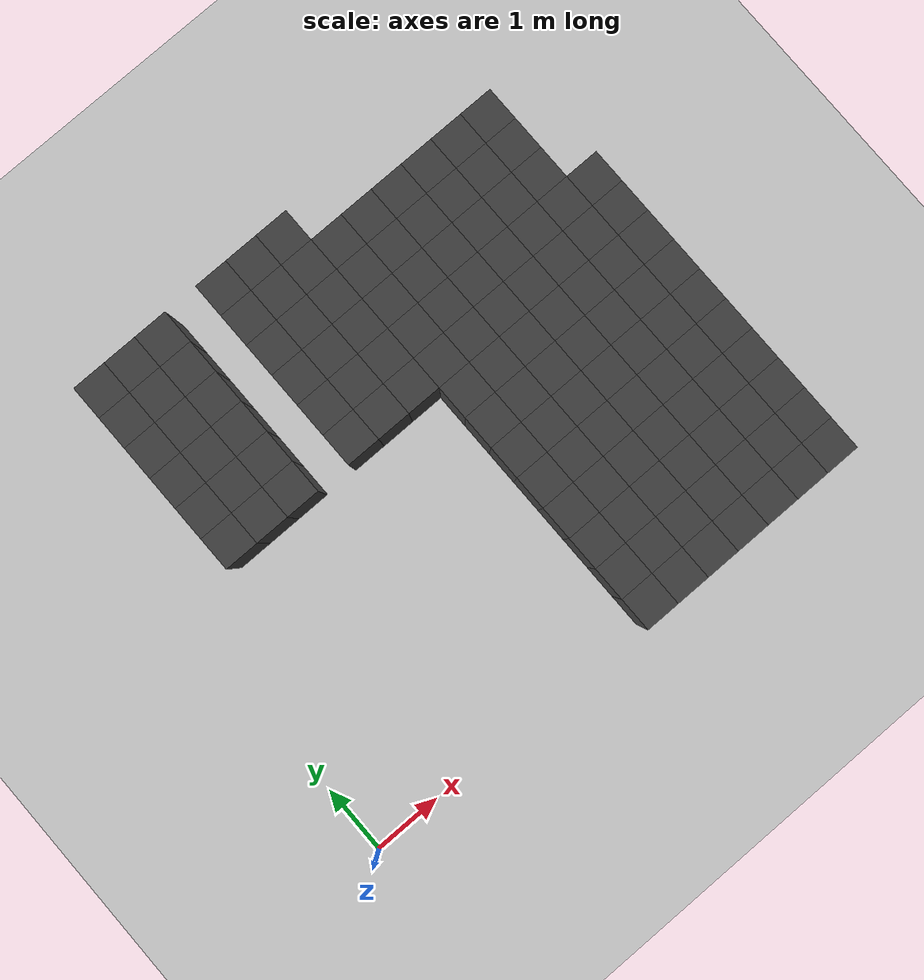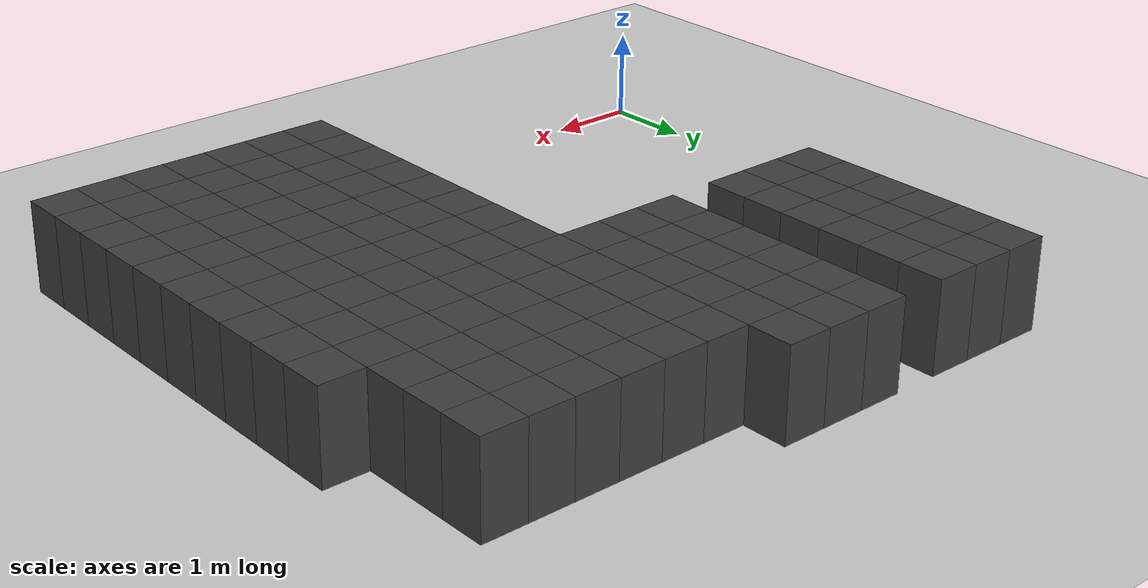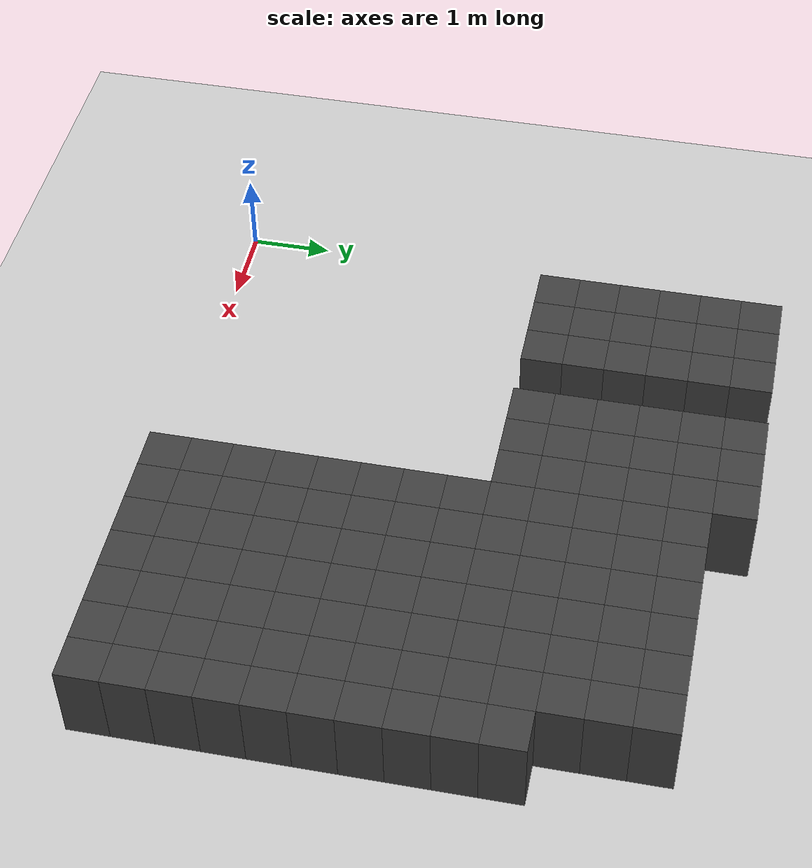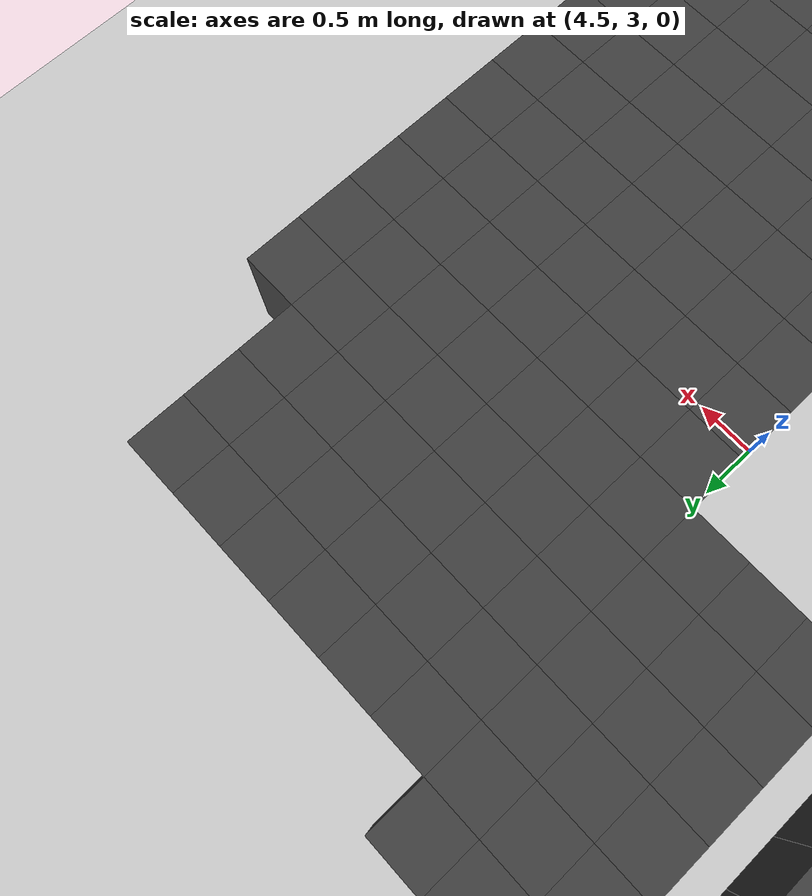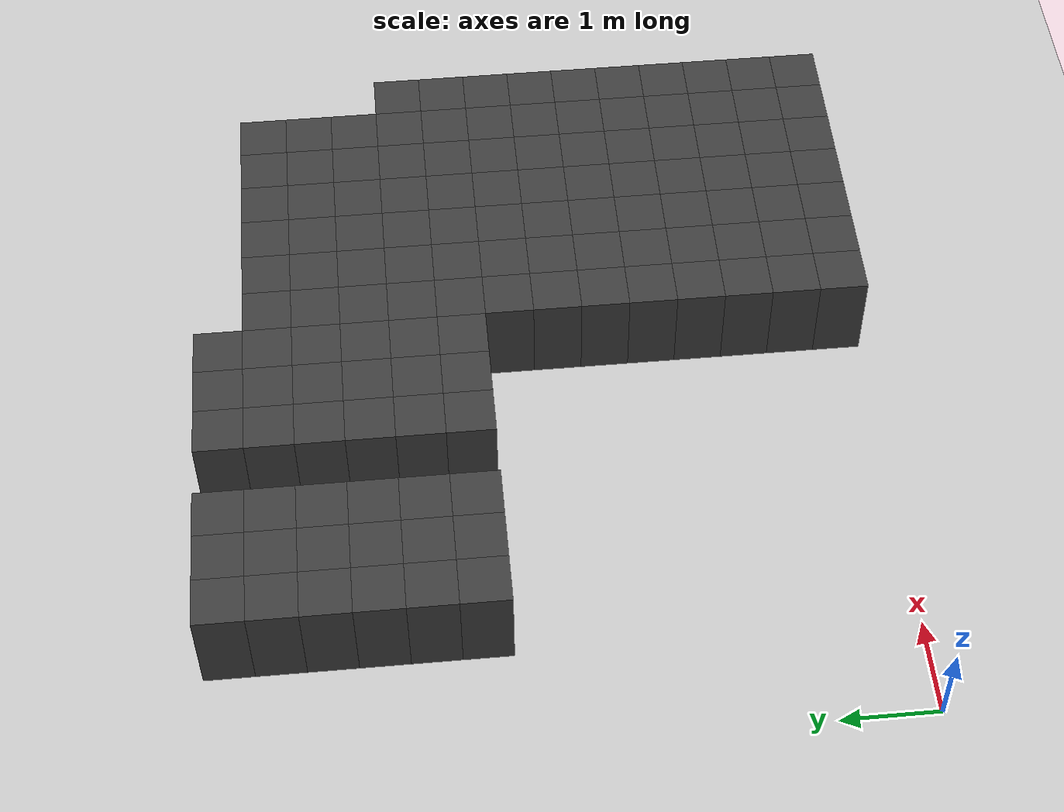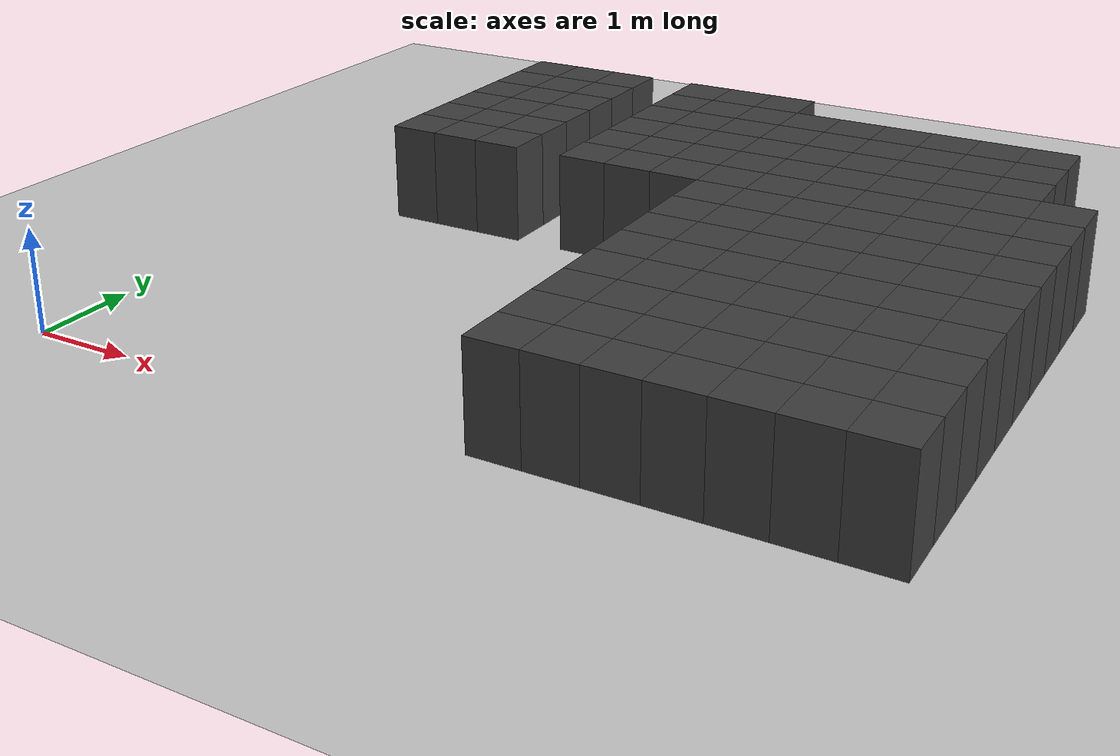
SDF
<sdf version="1.7">
 <world name="map_12818">
  <model name="ground_plane">
   <static>true</static>
   <link name="link">
    <collision name="collision">
     <geometry><plane><normal>0 0 1</normal><size>200 200</size></plane></geometry>
    </collision>
    <visual name="visual">
     <geometry><plane><normal>0 0 1</normal><size>200 200</size></plane></geometry>
     <material><ambient>0.8 0.8 0.8 1</ambient><diffuse>0.8 0.8 0.8 1</diffuse></material>
    </visual>
   </link>
  </model>
  <model name="maze_environment">
   <static>true</static>
   <link name="wall_539">
    <pose>1.250 6.750 0.500 0 0 0</pose>
    <collision name="col"><geometry><box><size>0.5 0.5 1.0</size></box></geometry></collision>
    <visual name="vis">
     <geometry><box><size>0.5 0.5 1.0</size></box></geometry>
     <material><ambient>0.15 0.15 0.15 1</ambient><diffuse>0.25 0.25 0.25 1</diffuse></material>
    </visual>
   </link>
   <link name="wall_540">
    <pose>1.750 6.750 0.500 0 0 0</pose>
    <collision name="col"><geometry><box><size>0.5 0.5 1.0</size></box></geometry></collision>
    <visual name="vis">
     <geometry><box><size>0.5 0.5 1.0</size></box></geometry>
     <material><ambient>0.15 0.15 0.15 1</ambient><diffuse>0.25 0.25 0.25 1</diffuse></material>
    </visual>
   </link>
   <link name="wall_541">
    <pose>2.250 6.750 0.500 0 0 0</pose>
    <collision name="col"><geometry><box><size>0.5 0.5 1.0</size></box></geometry></collision>
    <visual name="vis">
     <geometry><box><size>0.5 0.5 1.0</size></box></geometry>
     <material><ambient>0.15 0.15 0.15 1</ambient><diffuse>0.25 0.25 0.25 1</diffuse></material>
    </visual>
   </link>
   <link name="wall_542">
    <pose>3.250 6.750 0.500 0 0 0</pose>
    <collision name="col"><geometry><box><size>0.5 0.5 1.0</size></box></geometry></collision>
    <visual name="vis">
     <geometry><box><size>0.5 0.5 1.0</size></box></geometry>
     <material><ambient>0.15 0.15 0.15 1</ambient><diffuse>0.25 0.25 0.25 1</diffuse></material>
    </visual>
   </link>
   <link name="wall_543">
    <pose>3.750 6.750 0.500 0 0 0</pose>
    <collision name="col"><geometry><box><size>0.5 0.5 1.0</size></box></geometry></collision>
    <visual name="vis">
     <geometry><box><size>0.5 0.5 1.0</size></box></geometry>
     <material><ambient>0.15 0.15 0.15 1</ambient><diffuse>0.25 0.25 0.25 1</diffuse></material>
    </visual>
   </link>
   <link name="wall_544">
    <pose>4.250 6.750 0.500 0 0 0</pose>
    <collision name="col"><geometry><box><size>0.5 0.5 1.0</size></box></geometry></collision>
    <visual name="vis">
     <geometry><box><size>0.5 0.5 1.0</size></box></geometry>
     <material><ambient>0.15 0.15 0.15 1</ambient><diffuse>0.25 0.25 0.25 1</diffuse></material>
    </visual>
   </link>
   <link name="wall_587">
    <pose>1.250 6.250 0.500 0 0 0</pose>
    <collision name="col"><geometry><box><size>0.5 0.5 1.0</size></box></geometry></collision>
    <visual name="vis">
     <geometry><box><size>0.5 0.5 1.0</size></box></geometry>
     <material><ambient>0.15 0.15 0.15 1</ambient><diffuse>0.25 0.25 0.25 1</diffuse></material>
    </visual>
   </link>
   <link name="wall_588">
    <pose>1.750 6.250 0.500 0 0 0</pose>
    <collision name="col"><geometry><box><size>0.5 0.5 1.0</size></box></geometry></collision>
    <visual name="vis">
     <geometry><box><size>0.5 0.5 1.0</size></box></geometry>
     <material><ambient>0.15 0.15 0.15 1</ambient><diffuse>0.25 0.25 0.25 1</diffuse></material>
    </visual>
   </link>
   <link name="wall_589">
    <pose>2.250 6.250 0.500 0 0 0</pose>
    <collision name="col"><geometry><box><size>0.5 0.5 1.0</size></box></geometry></collision>
    <visual name="vis">
     <geometry><box><size>0.5 0.5 1.0</size></box></geometry>
     <material><ambient>0.15 0.15 0.15 1</ambient><diffuse>0.25 0.25 0.25 1</diffuse></material>
    </visual>
   </link>
   <link name="wall_590">
    <pose>3.250 6.250 0.500 0 0 0</pose>
    <collision name="col"><geometry><box><size>0.5 0.5 1.0</size></box></geometry></collision>
    <visual name="vis">
     <geometry><box><size>0.5 0.5 1.0</size></box></geometry>
     <material><ambient>0.15 0.15 0.15 1</ambient><diffuse>0.25 0.25 0.25 1</diffuse></material>
    </visual>
   </link>
   <link name="wall_591">
    <pose>3.750 6.250 0.500 0 0 0</pose>
    <collision name="col"><geometry><box><size>0.5 0.5 1.0</size></box></geometry></collision>
    <visual name="vis">
     <geometry><box><size>0.5 0.5 1.0</size></box></geometry>
     <material><ambient>0.15 0.15 0.15 1</ambient><diffuse>0.25 0.25 0.25 1</diffuse></material>
    </visual>
   </link>
   <link name="wall_592">
    <pose>4.250 6.250 0.500 0 0 0</pose>
    <collision name="col"><geometry><box><size>0.5 0.5 1.0</size></box></geometry></collision>
    <visual name="vis">
     <geometry><box><size>0.5 0.5 1.0</size></box></geometry>
     <material><ambient>0.15 0.15 0.15 1</ambient><diffuse>0.25 0.25 0.25 1</diffuse></material>
    </visual>
   </link>
   <link name="wall_593">
    <pose>4.750 6.250 0.500 0 0 0</pose>
    <collision name="col"><geometry><box><size>0.5 0.5 1.0</size></box></geometry></collision>
    <visual name="vis">
     <geometry><box><size>0.5 0.5 1.0</size></box></geometry>
     <material><ambient>0.15 0.15 0.15 1</ambient><diffuse>0.25 0.25 0.25 1</diffuse></material>
    </visual>
   </link>
   <link name="wall_594">
    <pose>5.250 6.250 0.500 0 0 0</pose>
    <collision name="col"><geometry><box><size>0.5 0.5 1.0</size></box></geometry></collision>
    <visual name="vis">
     <geometry><box><size>0.5 0.5 1.0</size></box></geometry>
     <material><ambient>0.15 0.15 0.15 1</ambient><diffuse>0.25 0.25 0.25 1</diffuse></material>
    </visual>
   </link>
   <link name="wall_595">
    <pose>5.750 6.250 0.500 0 0 0</pose>
    <collision name="col"><geometry><box><size>0.5 0.5 1.0</size></box></geometry></collision>
    <visual name="vis">
     <geometry><box><size>0.5 0.5 1.0</size></box></geometry>
     <material><ambient>0.15 0.15 0.15 1</ambient><diffuse>0.25 0.25 0.25 1</diffuse></material>
    </visual>
   </link>
   <link name="wall_596">
    <pose>6.250 6.250 0.500 0 0 0</pose>
    <collision name="col"><geometry><box><size>0.5 0.5 1.0</size></box></geometry></collision>
    <visual name="vis">
     <geometry><box><size>0.5 0.5 1.0</size></box></geometry>
     <material><ambient>0.15 0.15 0.15 1</ambient><diffuse>0.25 0.25 0.25 1</diffuse></material>
    </visual>
   </link>
   <link name="wall_597">
    <pose>6.750 6.250 0.500 0 0 0</pose>
    <collision name="col"><geometry><box><size>0.5 0.5 1.0</size></box></geometry></collision>
    <visual name="vis">
     <geometry><box><size>0.5 0.5 1.0</size></box></geometry>
     <material><ambient>0.15 0.15 0.15 1</ambient><diffuse>0.25 0.25 0.25 1</diffuse></material>
    </visual>
   </link>
   <link name="wall_598">
    <pose>7.250 6.250 0.500 0 0 0</pose>
    <collision name="col"><geometry><box><size>0.5 0.5 1.0</size></box></geometry></collision>
    <visual name="vis">
     <geometry><box><size>0.5 0.5 1.0</size></box></geometry>
     <material><ambient>0.15 0.15 0.15 1</ambient><diffuse>0.25 0.25 0.25 1</diffuse></material>
    </visual>
   </link>
   <link name="wall_635">
    <pose>1.250 5.750 0.500 0 0 0</pose>
    <collision name="col"><geometry><box><size>0.5 0.5 1.0</size></box></geometry></collision>
    <visual name="vis">
     <geometry><box><size>0.5 0.5 1.0</size></box></geometry>
     <material><ambient>0.15 0.15 0.15 1</ambient><diffuse>0.25 0.25 0.25 1</diffuse></material>
    </visual>
   </link>
   <link name="wall_636">
    <pose>1.750 5.750 0.500 0 0 0</pose>
    <collision name="col"><geometry><box><size>0.5 0.5 1.0</size></box></geometry></collision>
    <visual name="vis">
     <geometry><box><size>0.5 0.5 1.0</size></box></geometry>
     <material><ambient>0.15 0.15 0.15 1</ambient><diffuse>0.25 0.25 0.25 1</diffuse></material>
    </visual>
   </link>
   <link name="wall_637">
    <pose>2.250 5.750 0.500 0 0 0</pose>
    <collision name="col"><geometry><box><size>0.5 0.5 1.0</size></box></geometry></collision>
    <visual name="vis">
     <geometry><box><size>0.5 0.5 1.0</size></box></geometry>
     <material><ambient>0.15 0.15 0.15 1</ambient><diffuse>0.25 0.25 0.25 1</diffuse></material>
    </visual>
   </link>
   <link name="wall_638">
    <pose>3.250 5.750 0.500 0 0 0</pose>
    <collision name="col"><geometry><box><size>0.5 0.5 1.0</size></box></geometry></collision>
    <visual name="vis">
     <geometry><box><size>0.5 0.5 1.0</size></box></geometry>
     <material><ambient>0.15 0.15 0.15 1</ambient><diffuse>0.25 0.25 0.25 1</diffuse></material>
    </visual>
   </link>
   <link name="wall_639">
    <pose>3.750 5.750 0.500 0 0 0</pose>
    <collision name="col"><geometry><box><size>0.5 0.5 1.0</size></box></geometry></collision>
    <visual name="vis">
     <geometry><box><size>0.5 0.5 1.0</size></box></geometry>
     <material><ambient>0.15 0.15 0.15 1</ambient><diffuse>0.25 0.25 0.25 1</diffuse></material>
    </visual>
   </link>
   <link name="wall_640">
    <pose>4.250 5.750 0.500 0 0 0</pose>
    <collision name="col"><geometry><box><size>0.5 0.5 1.0</size></box></geometry></collision>
    <visual name="vis">
     <geometry><box><size>0.5 0.5 1.0</size></box></geometry>
     <material><ambient>0.15 0.15 0.15 1</ambient><diffuse>0.25 0.25 0.25 1</diffuse></material>
    </visual>
   </link>
   <link name="wall_641">
    <pose>4.750 5.750 0.500 0 0 0</pose>
    <collision name="col"><geometry><box><size>0.5 0.5 1.0</size></box></geometry></collision>
    <visual name="vis">
     <geometry><box><size>0.5 0.5 1.0</size></box></geometry>
     <material><ambient>0.15 0.15 0.15 1</ambient><diffuse>0.25 0.25 0.25 1</diffuse></material>
    </visual>
   </link>
   <link name="wall_642">
    <pose>5.250 5.750 0.500 0 0 0</pose>
    <collision name="col"><geometry><box><size>0.5 0.5 1.0</size></box></geometry></collision>
    <visual name="vis">
     <geometry><box><size>0.5 0.5 1.0</size></box></geometry>
     <material><ambient>0.15 0.15 0.15 1</ambient><diffuse>0.25 0.25 0.25 1</diffuse></material>
    </visual>
   </link>
   <link name="wall_643">
    <pose>5.750 5.750 0.500 0 0 0</pose>
    <collision name="col"><geometry><box><size>0.5 0.5 1.0</size></box></geometry></collision>
    <visual name="vis">
     <geometry><box><size>0.5 0.5 1.0</size></box></geometry>
     <material><ambient>0.15 0.15 0.15 1</ambient><diffuse>0.25 0.25 0.25 1</diffuse></material>
    </visual>
   </link>
   <link name="wall_644">
    <pose>6.250 5.750 0.500 0 0 0</pose>
    <collision name="col"><geometry><box><size>0.5 0.5 1.0</size></box></geometry></collision>
    <visual name="vis">
     <geometry><box><size>0.5 0.5 1.0</size></box></geometry>
     <material><ambient>0.15 0.15 0.15 1</ambient><diffuse>0.25 0.25 0.25 1</diffuse></material>
    </visual>
   </link>
   <link name="wall_645">
    <pose>6.750 5.750 0.500 0 0 0</pose>
    <collision name="col"><geometry><box><size>0.5 0.5 1.0</size></box></geometry></collision>
    <visual name="vis">
     <geometry><box><size>0.5 0.5 1.0</size></box></geometry>
     <material><ambient>0.15 0.15 0.15 1</ambient><diffuse>0.25 0.25 0.25 1</diffuse></material>
    </visual>
   </link>
   <link name="wall_646">
    <pose>7.250 5.750 0.500 0 0 0</pose>
    <collision name="col"><geometry><box><size>0.5 0.5 1.0</size></box></geometry></collision>
    <visual name="vis">
     <geometry><box><size>0.5 0.5 1.0</size></box></geometry>
     <material><ambient>0.15 0.15 0.15 1</ambient><diffuse>0.25 0.25 0.25 1</diffuse></material>
    </visual>
   </link>
   <link name="wall_683">
    <pose>1.250 5.250 0.500 0 0 0</pose>
    <collision name="col"><geometry><box><size>0.5 0.5 1.0</size></box></geometry></collision>
    <visual name="vis">
     <geometry><box><size>0.5 0.5 1.0</size></box></geometry>
     <material><ambient>0.15 0.15 0.15 1</ambient><diffuse>0.25 0.25 0.25 1</diffuse></material>
    </visual>
   </link>
   <link name="wall_684">
    <pose>1.750 5.250 0.500 0 0 0</pose>
    <collision name="col"><geometry><box><size>0.5 0.5 1.0</size></box></geometry></collision>
    <visual name="vis">
     <geometry><box><size>0.5 0.5 1.0</size></box></geometry>
     <material><ambient>0.15 0.15 0.15 1</ambient><diffuse>0.25 0.25 0.25 1</diffuse></material>
    </visual>
   </link>
   <link name="wall_685">
    <pose>2.250 5.250 0.500 0 0 0</pose>
    <collision name="col"><geometry><box><size>0.5 0.5 1.0</size></box></geometry></collision>
    <visual name="vis">
     <geometry><box><size>0.5 0.5 1.0</size></box></geometry>
     <material><ambient>0.15 0.15 0.15 1</ambient><diffuse>0.25 0.25 0.25 1</diffuse></material>
    </visual>
   </link>
   <link name="wall_686">
    <pose>3.250 5.250 0.500 0 0 0</pose>
    <collision name="col"><geometry><box><size>0.5 0.5 1.0</size></box></geometry></collision>
    <visual name="vis">
     <geometry><box><size>0.5 0.5 1.0</size></box></geometry>
     <material><ambient>0.15 0.15 0.15 1</ambient><diffuse>0.25 0.25 0.25 1</diffuse></material>
    </visual>
   </link>
   <link name="wall_687">
    <pose>3.750 5.250 0.500 0 0 0</pose>
    <collision name="col"><geometry><box><size>0.5 0.5 1.0</size></box></geometry></collision>
    <visual name="vis">
     <geometry><box><size>0.5 0.5 1.0</size></box></geometry>
     <material><ambient>0.15 0.15 0.15 1</ambient><diffuse>0.25 0.25 0.25 1</diffuse></material>
    </visual>
   </link>
   <link name="wall_688">
    <pose>4.250 5.250 0.500 0 0 0</pose>
    <collision name="col"><geometry><box><size>0.5 0.5 1.0</size></box></geometry></collision>
    <visual name="vis">
     <geometry><box><size>0.5 0.5 1.0</size></box></geometry>
     <material><ambient>0.15 0.15 0.15 1</ambient><diffuse>0.25 0.25 0.25 1</diffuse></material>
    </visual>
   </link>
   <link name="wall_689">
    <pose>4.750 5.250 0.500 0 0 0</pose>
    <collision name="col"><geometry><box><size>0.5 0.5 1.0</size></box></geometry></collision>
    <visual name="vis">
     <geometry><box><size>0.5 0.5 1.0</size></box></geometry>
     <material><ambient>0.15 0.15 0.15 1</ambient><diffuse>0.25 0.25 0.25 1</diffuse></material>
    </visual>
   </link>
   <link name="wall_690">
    <pose>5.250 5.250 0.500 0 0 0</pose>
    <collision name="col"><geometry><box><size>0.5 0.5 1.0</size></box></geometry></collision>
    <visual name="vis">
     <geometry><box><size>0.5 0.5 1.0</size></box></geometry>
     <material><ambient>0.15 0.15 0.15 1</ambient><diffuse>0.25 0.25 0.25 1</diffuse></material>
    </visual>
   </link>
   <link name="wall_691">
    <pose>5.750 5.250 0.500 0 0 0</pose>
    <collision name="col"><geometry><box><size>0.5 0.5 1.0</size></box></geometry></collision>
    <visual name="vis">
     <geometry><box><size>0.5 0.5 1.0</size></box></geometry>
     <material><ambient>0.15 0.15 0.15 1</ambient><diffuse>0.25 0.25 0.25 1</diffuse></material>
    </visual>
   </link>
   <link name="wall_692">
    <pose>6.250 5.250 0.500 0 0 0</pose>
    <collision name="col"><geometry><box><size>0.5 0.5 1.0</size></box></geometry></collision>
    <visual name="vis">
     <geometry><box><size>0.5 0.5 1.0</size></box></geometry>
     <material><ambient>0.15 0.15 0.15 1</ambient><diffuse>0.25 0.25 0.25 1</diffuse></material>
    </visual>
   </link>
   <link name="wall_693">
    <pose>6.750 5.250 0.500 0 0 0</pose>
    <collision name="col"><geometry><box><size>0.5 0.5 1.0</size></box></geometry></collision>
    <visual name="vis">
     <geometry><box><size>0.5 0.5 1.0</size></box></geometry>
     <material><ambient>0.15 0.15 0.15 1</ambient><diffuse>0.25 0.25 0.25 1</diffuse></material>
    </visual>
   </link>
   <link name="wall_694">
    <pose>7.250 5.250 0.500 0 0 0</pose>
    <collision name="col"><geometry><box><size>0.5 0.5 1.0</size></box></geometry></collision>
    <visual name="vis">
     <geometry><box><size>0.5 0.5 1.0</size></box></geometry>
     <material><ambient>0.15 0.15 0.15 1</ambient><diffuse>0.25 0.25 0.25 1</diffuse></material>
    </visual>
   </link>
   <link name="wall_731">
    <pose>1.250 4.750 0.500 0 0 0</pose>
    <collision name="col"><geometry><box><size>0.5 0.5 1.0</size></box></geometry></collision>
    <visual name="vis">
     <geometry><box><size>0.5 0.5 1.0</size></box></geometry>
     <material><ambient>0.15 0.15 0.15 1</ambient><diffuse>0.25 0.25 0.25 1</diffuse></material>
    </visual>
   </link>
   <link name="wall_732">
    <pose>1.750 4.750 0.500 0 0 0</pose>
    <collision name="col"><geometry><box><size>0.5 0.5 1.0</size></box></geometry></collision>
    <visual name="vis">
     <geometry><box><size>0.5 0.5 1.0</size></box></geometry>
     <material><ambient>0.15 0.15 0.15 1</ambient><diffuse>0.25 0.25 0.25 1</diffuse></material>
    </visual>
   </link>
   <link name="wall_733">
    <pose>2.250 4.750 0.500 0 0 0</pose>
    <collision name="col"><geometry><box><size>0.5 0.5 1.0</size></box></geometry></collision>
    <visual name="vis">
     <geometry><box><size>0.5 0.5 1.0</size></box></geometry>
     <material><ambient>0.15 0.15 0.15 1</ambient><diffuse>0.25 0.25 0.25 1</diffuse></material>
    </visual>
   </link>
   <link name="wall_734">
    <pose>3.250 4.750 0.500 0 0 0</pose>
    <collision name="col"><geometry><box><size>0.5 0.5 1.0</size></box></geometry></collision>
    <visual name="vis">
     <geometry><box><size>0.5 0.5 1.0</size></box></geometry>
     <material><ambient>0.15 0.15 0.15 1</ambient><diffuse>0.25 0.25 0.25 1</diffuse></material>
    </visual>
   </link>
   <link name="wall_735">
    <pose>3.750 4.750 0.500 0 0 0</pose>
    <collision name="col"><geometry><box><size>0.5 0.5 1.0</size></box></geometry></collision>
    <visual name="vis">
     <geometry><box><size>0.5 0.5 1.0</size></box></geometry>
     <material><ambient>0.15 0.15 0.15 1</ambient><diffuse>0.25 0.25 0.25 1</diffuse></material>
    </visual>
   </link>
   <link name="wall_736">
    <pose>4.250 4.750 0.500 0 0 0</pose>
    <collision name="col"><geometry><box><size>0.5 0.5 1.0</size></box></geometry></collision>
    <visual name="vis">
     <geometry><box><size>0.5 0.5 1.0</size></box></geometry>
     <material><ambient>0.15 0.15 0.15 1</ambient><diffuse>0.25 0.25 0.25 1</diffuse></material>
    </visual>
   </link>
   <link name="wall_737">
    <pose>4.750 4.750 0.500 0 0 0</pose>
    <collision name="col"><geometry><box><size>0.5 0.5 1.0</size></box></geometry></collision>
    <visual name="vis">
     <geometry><box><size>0.5 0.5 1.0</size></box></geometry>
     <material><ambient>0.15 0.15 0.15 1</ambient><diffuse>0.25 0.25 0.25 1</diffuse></material>
    </visual>
   </link>
   <link name="wall_738">
    <pose>5.250 4.750 0.500 0 0 0</pose>
    <collision name="col"><geometry><box><size>0.5 0.5 1.0</size></box></geometry></collision>
    <visual name="vis">
     <geometry><box><size>0.5 0.5 1.0</size></box></geometry>
     <material><ambient>0.15 0.15 0.15 1</ambient><diffuse>0.25 0.25 0.25 1</diffuse></material>
    </visual>
   </link>
   <link name="wall_739">
    <pose>5.750 4.750 0.500 0 0 0</pose>
    <collision name="col"><geometry><box><size>0.5 0.5 1.0</size></box></geometry></collision>
    <visual name="vis">
     <geometry><box><size>0.5 0.5 1.0</size></box></geometry>
     <material><ambient>0.15 0.15 0.15 1</ambient><diffuse>0.25 0.25 0.25 1</diffuse></material>
    </visual>
   </link>
   <link name="wall_740">
    <pose>6.250 4.750 0.500 0 0 0</pose>
    <collision name="col"><geometry><box><size>0.5 0.5 1.0</size></box></geometry></collision>
    <visual name="vis">
     <geometry><box><size>0.5 0.5 1.0</size></box></geometry>
     <material><ambient>0.15 0.15 0.15 1</ambient><diffuse>0.25 0.25 0.25 1</diffuse></material>
    </visual>
   </link>
   <link name="wall_741">
    <pose>6.750 4.750 0.500 0 0 0</pose>
    <collision name="col"><geometry><box><size>0.5 0.5 1.0</size></box></geometry></collision>
    <visual name="vis">
     <geometry><box><size>0.5 0.5 1.0</size></box></geometry>
     <material><ambient>0.15 0.15 0.15 1</ambient><diffuse>0.25 0.25 0.25 1</diffuse></material>
    </visual>
   </link>
   <link name="wall_742">
    <pose>7.250 4.750 0.500 0 0 0</pose>
    <collision name="col"><geometry><box><size>0.5 0.5 1.0</size></box></geometry></collision>
    <visual name="vis">
     <geometry><box><size>0.5 0.5 1.0</size></box></geometry>
     <material><ambient>0.15 0.15 0.15 1</ambient><diffuse>0.25 0.25 0.25 1</diffuse></material>
    </visual>
   </link>
   <link name="wall_743">
    <pose>7.750 4.750 0.500 0 0 0</pose>
    <collision name="col"><geometry><box><size>0.5 0.5 1.0</size></box></geometry></collision>
    <visual name="vis">
     <geometry><box><size>0.5 0.5 1.0</size></box></geometry>
     <material><ambient>0.15 0.15 0.15 1</ambient><diffuse>0.25 0.25 0.25 1</diffuse></material>
    </visual>
   </link>
   <link name="wall_779">
    <pose>1.250 4.250 0.500 0 0 0</pose>
    <collision name="col"><geometry><box><size>0.5 0.5 1.0</size></box></geometry></collision>
    <visual name="vis">
     <geometry><box><size>0.5 0.5 1.0</size></box></geometry>
     <material><ambient>0.15 0.15 0.15 1</ambient><diffuse>0.25 0.25 0.25 1</diffuse></material>
    </visual>
   </link>
   <link name="wall_780">
    <pose>1.750 4.250 0.500 0 0 0</pose>
    <collision name="col"><geometry><box><size>0.5 0.5 1.0</size></box></geometry></collision>
    <visual name="vis">
     <geometry><box><size>0.5 0.5 1.0</size></box></geometry>
     <material><ambient>0.15 0.15 0.15 1</ambient><diffuse>0.25 0.25 0.25 1</diffuse></material>
    </visual>
   </link>
   <link name="wall_781">
    <pose>2.250 4.250 0.500 0 0 0</pose>
    <collision name="col"><geometry><box><size>0.5 0.5 1.0</size></box></geometry></collision>
    <visual name="vis">
     <geometry><box><size>0.5 0.5 1.0</size></box></geometry>
     <material><ambient>0.15 0.15 0.15 1</ambient><diffuse>0.25 0.25 0.25 1</diffuse></material>
    </visual>
   </link>
   <link name="wall_782">
    <pose>3.250 4.250 0.500 0 0 0</pose>
    <collision name="col"><geometry><box><size>0.5 0.5 1.0</size></box></geometry></collision>
    <visual name="vis">
     <geometry><box><size>0.5 0.5 1.0</size></box></geometry>
     <material><ambient>0.15 0.15 0.15 1</ambient><diffuse>0.25 0.25 0.25 1</diffuse></material>
    </visual>
   </link>
   <link name="wall_783">
    <pose>3.750 4.250 0.500 0 0 0</pose>
    <collision name="col"><geometry><box><size>0.5 0.5 1.0</size></box></geometry></collision>
    <visual name="vis">
     <geometry><box><size>0.5 0.5 1.0</size></box></geometry>
     <material><ambient>0.15 0.15 0.15 1</ambient><diffuse>0.25 0.25 0.25 1</diffuse></material>
    </visual>
   </link>
   <link name="wall_784">
    <pose>4.250 4.250 0.500 0 0 0</pose>
    <collision name="col"><geometry><box><size>0.5 0.5 1.0</size></box></geometry></collision>
    <visual name="vis">
     <geometry><box><size>0.5 0.5 1.0</size></box></geometry>
     <material><ambient>0.15 0.15 0.15 1</ambient><diffuse>0.25 0.25 0.25 1</diffuse></material>
    </visual>
   </link>
   <link name="wall_785">
    <pose>4.750 4.250 0.500 0 0 0</pose>
    <collision name="col"><geometry><box><size>0.5 0.5 1.0</size></box></geometry></collision>
    <visual name="vis">
     <geometry><box><size>0.5 0.5 1.0</size></box></geometry>
     <material><ambient>0.15 0.15 0.15 1</ambient><diffuse>0.25 0.25 0.25 1</diffuse></material>
    </visual>
   </link>
   <link name="wall_786">
    <pose>5.250 4.250 0.500 0 0 0</pose>
    <collision name="col"><geometry><box><size>0.5 0.5 1.0</size></box></geometry></collision>
    <visual name="vis">
     <geometry><box><size>0.5 0.5 1.0</size></box></geometry>
     <material><ambient>0.15 0.15 0.15 1</ambient><diffuse>0.25 0.25 0.25 1</diffuse></material>
    </visual>
   </link>
   <link name="wall_787">
    <pose>5.750 4.250 0.500 0 0 0</pose>
    <collision name="col"><geometry><box><size>0.5 0.5 1.0</size></box></geometry></collision>
    <visual name="vis">
     <geometry><box><size>0.5 0.5 1.0</size></box></geometry>
     <material><ambient>0.15 0.15 0.15 1</ambient><diffuse>0.25 0.25 0.25 1</diffuse></material>
    </visual>
   </link>
   <link name="wall_788">
    <pose>6.250 4.250 0.500 0 0 0</pose>
    <collision name="col"><geometry><box><size>0.5 0.5 1.0</size></box></geometry></collision>
    <visual name="vis">
     <geometry><box><size>0.5 0.5 1.0</size></box></geometry>
     <material><ambient>0.15 0.15 0.15 1</ambient><diffuse>0.25 0.25 0.25 1</diffuse></material>
    </visual>
   </link>
   <link name="wall_789">
    <pose>6.750 4.250 0.500 0 0 0</pose>
    <collision name="col"><geometry><box><size>0.5 0.5 1.0</size></box></geometry></collision>
    <visual name="vis">
     <geometry><box><size>0.5 0.5 1.0</size></box></geometry>
     <material><ambient>0.15 0.15 0.15 1</ambient><diffuse>0.25 0.25 0.25 1</diffuse></material>
    </visual>
   </link>
   <link name="wall_790">
    <pose>7.250 4.250 0.500 0 0 0</pose>
    <collision name="col"><geometry><box><size>0.5 0.5 1.0</size></box></geometry></collision>
    <visual name="vis">
     <geometry><box><size>0.5 0.5 1.0</size></box></geometry>
     <material><ambient>0.15 0.15 0.15 1</ambient><diffuse>0.25 0.25 0.25 1</diffuse></material>
    </visual>
   </link>
   <link name="wall_791">
    <pose>7.750 4.250 0.500 0 0 0</pose>
    <collision name="col"><geometry><box><size>0.5 0.5 1.0</size></box></geometry></collision>
    <visual name="vis">
     <geometry><box><size>0.5 0.5 1.0</size></box></geometry>
     <material><ambient>0.15 0.15 0.15 1</ambient><diffuse>0.25 0.25 0.25 1</diffuse></material>
    </visual>
   </link>
   <link name="wall_826">
    <pose>4.750 3.750 0.500 0 0 0</pose>
    <collision name="col"><geometry><box><size>0.5 0.5 1.0</size></box></geometry></collision>
    <visual name="vis">
     <geometry><box><size>0.5 0.5 1.0</size></box></geometry>
     <material><ambient>0.15 0.15 0.15 1</ambient><diffuse>0.25 0.25 0.25 1</diffuse></material>
    </visual>
   </link>
   <link name="wall_827">
    <pose>5.250 3.750 0.500 0 0 0</pose>
    <collision name="col"><geometry><box><size>0.5 0.5 1.0</size></box></geometry></collision>
    <visual name="vis">
     <geometry><box><size>0.5 0.5 1.0</size></box></geometry>
     <material><ambient>0.15 0.15 0.15 1</ambient><diffuse>0.25 0.25 0.25 1</diffuse></material>
    </visual>
   </link>
   <link name="wall_828">
    <pose>5.750 3.750 0.500 0 0 0</pose>
    <collision name="col"><geometry><box><size>0.5 0.5 1.0</size></box></geometry></collision>
    <visual name="vis">
     <geometry><box><size>0.5 0.5 1.0</size></box></geometry>
     <material><ambient>0.15 0.15 0.15 1</ambient><diffuse>0.25 0.25 0.25 1</diffuse></material>
    </visual>
   </link>
   <link name="wall_829">
    <pose>6.250 3.750 0.500 0 0 0</pose>
    <collision name="col"><geometry><box><size>0.5 0.5 1.0</size></box></geometry></collision>
    <visual name="vis">
     <geometry><box><size>0.5 0.5 1.0</size></box></geometry>
     <material><ambient>0.15 0.15 0.15 1</ambient><diffuse>0.25 0.25 0.25 1</diffuse></material>
    </visual>
   </link>
   <link name="wall_830">
    <pose>6.750 3.750 0.500 0 0 0</pose>
    <collision name="col"><geometry><box><size>0.5 0.5 1.0</size></box></geometry></collision>
    <visual name="vis">
     <geometry><box><size>0.5 0.5 1.0</size></box></geometry>
     <material><ambient>0.15 0.15 0.15 1</ambient><diffuse>0.25 0.25 0.25 1</diffuse></material>
    </visual>
   </link>
   <link name="wall_831">
    <pose>7.250 3.750 0.500 0 0 0</pose>
    <collision name="col"><geometry><box><size>0.5 0.5 1.0</size></box></geometry></collision>
    <visual name="vis">
     <geometry><box><size>0.5 0.5 1.0</size></box></geometry>
     <material><ambient>0.15 0.15 0.15 1</ambient><diffuse>0.25 0.25 0.25 1</diffuse></material>
    </visual>
   </link>
   <link name="wall_832">
    <pose>7.750 3.750 0.500 0 0 0</pose>
    <collision name="col"><geometry><box><size>0.5 0.5 1.0</size></box></geometry></collision>
    <visual name="vis">
     <geometry><box><size>0.5 0.5 1.0</size></box></geometry>
     <material><ambient>0.15 0.15 0.15 1</ambient><diffuse>0.25 0.25 0.25 1</diffuse></material>
    </visual>
   </link>
   <link name="wall_867">
    <pose>4.750 3.250 0.500 0 0 0</pose>
    <collision name="col"><geometry><box><size>0.5 0.5 1.0</size></box></geometry></collision>
    <visual name="vis">
     <geometry><box><size>0.5 0.5 1.0</size></box></geometry>
     <material><ambient>0.15 0.15 0.15 1</ambient><diffuse>0.25 0.25 0.25 1</diffuse></material>
    </visual>
   </link>
   <link name="wall_868">
    <pose>5.250 3.250 0.500 0 0 0</pose>
    <collision name="col"><geometry><box><size>0.5 0.5 1.0</size></box></geometry></collision>
    <visual name="vis">
     <geometry><box><size>0.5 0.5 1.0</size></box></geometry>
     <material><ambient>0.15 0.15 0.15 1</ambient><diffuse>0.25 0.25 0.25 1</diffuse></material>
    </visual>
   </link>
   <link name="wall_869">
    <pose>5.750 3.250 0.500 0 0 0</pose>
    <collision name="col"><geometry><box><size>0.5 0.5 1.0</size></box></geometry></collision>
    <visual name="vis">
     <geometry><box><size>0.5 0.5 1.0</size></box></geometry>
     <material><ambient>0.15 0.15 0.15 1</ambient><diffuse>0.25 0.25 0.25 1</diffuse></material>
    </visual>
   </link>
   <link name="wall_870">
    <pose>6.250 3.250 0.500 0 0 0</pose>
    <collision name="col"><geometry><box><size>0.5 0.5 1.0</size></box></geometry></collision>
    <visual name="vis">
     <geometry><box><size>0.5 0.5 1.0</size></box></geometry>
     <material><ambient>0.15 0.15 0.15 1</ambient><diffuse>0.25 0.25 0.25 1</diffuse></material>
    </visual>
   </link>
   <link name="wall_871">
    <pose>6.750 3.250 0.500 0 0 0</pose>
    <collision name="col"><geometry><box><size>0.5 0.5 1.0</size></box></geometry></collision>
    <visual name="vis">
     <geometry><box><size>0.5 0.5 1.0</size></box></geometry>
     <material><ambient>0.15 0.15 0.15 1</ambient><diffuse>0.25 0.25 0.25 1</diffuse></material>
    </visual>
   </link>
   <link name="wall_872">
    <pose>7.250 3.250 0.500 0 0 0</pose>
    <collision name="col"><geometry><box><size>0.5 0.5 1.0</size></box></geometry></collision>
    <visual name="vis">
     <geometry><box><size>0.5 0.5 1.0</size></box></geometry>
     <material><ambient>0.15 0.15 0.15 1</ambient><diffuse>0.25 0.25 0.25 1</diffuse></material>
    </visual>
   </link>
   <link name="wall_873">
    <pose>7.750 3.250 0.500 0 0 0</pose>
    <collision name="col"><geometry><box><size>0.5 0.5 1.0</size></box></geometry></collision>
    <visual name="vis">
     <geometry><box><size>0.5 0.5 1.0</size></box></geometry>
     <material><ambient>0.15 0.15 0.15 1</ambient><diffuse>0.25 0.25 0.25 1</diffuse></material>
    </visual>
   </link>
   <link name="wall_908">
    <pose>4.750 2.750 0.500 0 0 0</pose>
    <collision name="col"><geometry><box><size>0.5 0.5 1.0</size></box></geometry></collision>
    <visual name="vis">
     <geometry><box><size>0.5 0.5 1.0</size></box></geometry>
     <material><ambient>0.15 0.15 0.15 1</ambient><diffuse>0.25 0.25 0.25 1</diffuse></material>
    </visual>
   </link>
   <link name="wall_909">
    <pose>5.250 2.750 0.500 0 0 0</pose>
    <collision name="col"><geometry><box><size>0.5 0.5 1.0</size></box></geometry></collision>
    <visual name="vis">
     <geometry><box><size>0.5 0.5 1.0</size></box></geometry>
     <material><ambient>0.15 0.15 0.15 1</ambient><diffuse>0.25 0.25 0.25 1</diffuse></material>
    </visual>
   </link>
   <link name="wall_910">
    <pose>5.750 2.750 0.500 0 0 0</pose>
    <collision name="col"><geometry><box><size>0.5 0.5 1.0</size></box></geometry></collision>
    <visual name="vis">
     <geometry><box><size>0.5 0.5 1.0</size></box></geometry>
     <material><ambient>0.15 0.15 0.15 1</ambient><diffuse>0.25 0.25 0.25 1</diffuse></material>
    </visual>
   </link>
   <link name="wall_911">
    <pose>6.250 2.750 0.500 0 0 0</pose>
    <collision name="col"><geometry><box><size>0.5 0.5 1.0</size></box></geometry></collision>
    <visual name="vis">
     <geometry><box><size>0.5 0.5 1.0</size></box></geometry>
     <material><ambient>0.15 0.15 0.15 1</ambient><diffuse>0.25 0.25 0.25 1</diffuse></material>
    </visual>
   </link>
   <link name="wall_912">
    <pose>6.750 2.750 0.500 0 0 0</pose>
    <collision name="col"><geometry><box><size>0.5 0.5 1.0</size></box></geometry></collision>
    <visual name="vis">
     <geometry><box><size>0.5 0.5 1.0</size></box></geometry>
     <material><ambient>0.15 0.15 0.15 1</ambient><diffuse>0.25 0.25 0.25 1</diffuse></material>
    </visual>
   </link>
   <link name="wall_913">
    <pose>7.250 2.750 0.500 0 0 0</pose>
    <collision name="col"><geometry><box><size>0.5 0.5 1.0</size></box></geometry></collision>
    <visual name="vis">
     <geometry><box><size>0.5 0.5 1.0</size></box></geometry>
     <material><ambient>0.15 0.15 0.15 1</ambient><diffuse>0.25 0.25 0.25 1</diffuse></material>
    </visual>
   </link>
   <link name="wall_914">
    <pose>7.750 2.750 0.500 0 0 0</pose>
    <collision name="col"><geometry><box><size>0.5 0.5 1.0</size></box></geometry></collision>
    <visual name="vis">
     <geometry><box><size>0.5 0.5 1.0</size></box></geometry>
     <material><ambient>0.15 0.15 0.15 1</ambient><diffuse>0.25 0.25 0.25 1</diffuse></material>
    </visual>
   </link>
   <link name="wall_949">
    <pose>4.750 2.250 0.500 0 0 0</pose>
    <collision name="col"><geometry><box><size>0.5 0.5 1.0</size></box></geometry></collision>
    <visual name="vis">
     <geometry><box><size>0.5 0.5 1.0</size></box></geometry>
     <material><ambient>0.15 0.15 0.15 1</ambient><diffuse>0.25 0.25 0.25 1</diffuse></material>
    </visual>
   </link>
   <link name="wall_950">
    <pose>5.250 2.250 0.500 0 0 0</pose>
    <collision name="col"><geometry><box><size>0.5 0.5 1.0</size></box></geometry></collision>
    <visual name="vis">
     <geometry><box><size>0.5 0.5 1.0</size></box></geometry>
     <material><ambient>0.15 0.15 0.15 1</ambient><diffuse>0.25 0.25 0.25 1</diffuse></material>
    </visual>
   </link>
   <link name="wall_951">
    <pose>5.750 2.250 0.500 0 0 0</pose>
    <collision name="col"><geometry><box><size>0.5 0.5 1.0</size></box></geometry></collision>
    <visual name="vis">
     <geometry><box><size>0.5 0.5 1.0</size></box></geometry>
     <material><ambient>0.15 0.15 0.15 1</ambient><diffuse>0.25 0.25 0.25 1</diffuse></material>
    </visual>
   </link>
   <link name="wall_952">
    <pose>6.250 2.250 0.500 0 0 0</pose>
    <collision name="col"><geometry><box><size>0.5 0.5 1.0</size></box></geometry></collision>
    <visual name="vis">
     <geometry><box><size>0.5 0.5 1.0</size></box></geometry>
     <material><ambient>0.15 0.15 0.15 1</ambient><diffuse>0.25 0.25 0.25 1</diffuse></material>
    </visual>
   </link>
   <link name="wall_953">
    <pose>6.750 2.250 0.500 0 0 0</pose>
    <collision name="col"><geometry><box><size>0.5 0.5 1.0</size></box></geometry></collision>
    <visual name="vis">
     <geometry><box><size>0.5 0.5 1.0</size></box></geometry>
     <material><ambient>0.15 0.15 0.15 1</ambient><diffuse>0.25 0.25 0.25 1</diffuse></material>
    </visual>
   </link>
   <link name="wall_954">
    <pose>7.250 2.250 0.500 0 0 0</pose>
    <collision name="col"><geometry><box><size>0.5 0.5 1.0</size></box></geometry></collision>
    <visual name="vis">
     <geometry><box><size>0.5 0.5 1.0</size></box></geometry>
     <material><ambient>0.15 0.15 0.15 1</ambient><diffuse>0.25 0.25 0.25 1</diffuse></material>
    </visual>
   </link>
   <link name="wall_955">
    <pose>7.750 2.250 0.500 0 0 0</pose>
    <collision name="col"><geometry><box><size>0.5 0.5 1.0</size></box></geometry></collision>
    <visual name="vis">
     <geometry><box><size>0.5 0.5 1.0</size></box></geometry>
     <material><ambient>0.15 0.15 0.15 1</ambient><diffuse>0.25 0.25 0.25 1</diffuse></material>
    </visual>
   </link>
   <link name="wall_987">
    <pose>4.750 1.750 0.500 0 0 0</pose>
    <collision name="col"><geometry><box><size>0.5 0.5 1.0</size></box></geometry></collision>
    <visual name="vis">
     <geometry><box><size>0.5 0.5 1.0</size></box></geometry>
     <material><ambient>0.15 0.15 0.15 1</ambient><diffuse>0.25 0.25 0.25 1</diffuse></material>
    </visual>
   </link>
   <link name="wall_988">
    <pose>5.250 1.750 0.500 0 0 0</pose>
    <collision name="col"><geometry><box><size>0.5 0.5 1.0</size></box></geometry></collision>
    <visual name="vis">
     <geometry><box><size>0.5 0.5 1.0</size></box></geometry>
     <material><ambient>0.15 0.15 0.15 1</ambient><diffuse>0.25 0.25 0.25 1</diffuse></material>
    </visual>
   </link>
   <link name="wall_989">
    <pose>5.750 1.750 0.500 0 0 0</pose>
    <collision name="col"><geometry><box><size>0.5 0.5 1.0</size></box></geometry></collision>
    <visual name="vis">
     <geometry><box><size>0.5 0.5 1.0</size></box></geometry>
     <material><ambient>0.15 0.15 0.15 1</ambient><diffuse>0.25 0.25 0.25 1</diffuse></material>
    </visual>
   </link>
   <link name="wall_990">
    <pose>6.250 1.750 0.500 0 0 0</pose>
    <collision name="col"><geometry><box><size>0.5 0.5 1.0</size></box></geometry></collision>
    <visual name="vis">
     <geometry><box><size>0.5 0.5 1.0</size></box></geometry>
     <material><ambient>0.15 0.15 0.15 1</ambient><diffuse>0.25 0.25 0.25 1</diffuse></material>
    </visual>
   </link>
   <link name="wall_991">
    <pose>6.750 1.750 0.500 0 0 0</pose>
    <collision name="col"><geometry><box><size>0.5 0.5 1.0</size></box></geometry></collision>
    <visual name="vis">
     <geometry><box><size>0.5 0.5 1.0</size></box></geometry>
     <material><ambient>0.15 0.15 0.15 1</ambient><diffuse>0.25 0.25 0.25 1</diffuse></material>
    </visual>
   </link>
   <link name="wall_992">
    <pose>7.250 1.750 0.500 0 0 0</pose>
    <collision name="col"><geometry><box><size>0.5 0.5 1.0</size></box></geometry></collision>
    <visual name="vis">
     <geometry><box><size>0.5 0.5 1.0</size></box></geometry>
     <material><ambient>0.15 0.15 0.15 1</ambient><diffuse>0.25 0.25 0.25 1</diffuse></material>
    </visual>
   </link>
   <link name="wall_993">
    <pose>7.750 1.750 0.500 0 0 0</pose>
    <collision name="col"><geometry><box><size>0.5 0.5 1.0</size></box></geometry></collision>
    <visual name="vis">
     <geometry><box><size>0.5 0.5 1.0</size></box></geometry>
     <material><ambient>0.15 0.15 0.15 1</ambient><diffuse>0.25 0.25 0.25 1</diffuse></material>
    </visual>
   </link>
   <link name="wall_1021">
    <pose>4.750 1.250 0.500 0 0 0</pose>
    <collision name="col"><geometry><box><size>0.5 0.5 1.0</size></box></geometry></collision>
    <visual name="vis">
     <geometry><box><size>0.5 0.5 1.0</size></box></geometry>
     <material><ambient>0.15 0.15 0.15 1</ambient><diffuse>0.25 0.25 0.25 1</diffuse></material>
    </visual>
   </link>
   <link name="wall_1022">
    <pose>5.250 1.250 0.500 0 0 0</pose>
    <collision name="col"><geometry><box><size>0.5 0.5 1.0</size></box></geometry></collision>
    <visual name="vis">
     <geometry><box><size>0.5 0.5 1.0</size></box></geometry>
     <material><ambient>0.15 0.15 0.15 1</ambient><diffuse>0.25 0.25 0.25 1</diffuse></material>
    </visual>
   </link>
   <link name="wall_1023">
    <pose>5.750 1.250 0.500 0 0 0</pose>
    <collision name="col"><geometry><box><size>0.5 0.5 1.0</size></box></geometry></collision>
    <visual name="vis">
     <geometry><box><size>0.5 0.5 1.0</size></box></geometry>
     <material><ambient>0.15 0.15 0.15 1</ambient><diffuse>0.25 0.25 0.25 1</diffuse></material>
    </visual>
   </link>
   <link name="wall_1024">
    <pose>6.250 1.250 0.500 0 0 0</pose>
    <collision name="col"><geometry><box><size>0.5 0.5 1.0</size></box></geometry></collision>
    <visual name="vis">
     <geometry><box><size>0.5 0.5 1.0</size></box></geometry>
     <material><ambient>0.15 0.15 0.15 1</ambient><diffuse>0.25 0.25 0.25 1</diffuse></material>
    </visual>
   </link>
   <link name="wall_1025">
    <pose>6.750 1.250 0.500 0 0 0</pose>
    <collision name="col"><geometry><box><size>0.5 0.5 1.0</size></box></geometry></collision>
    <visual name="vis">
     <geometry><box><size>0.5 0.5 1.0</size></box></geometry>
     <material><ambient>0.15 0.15 0.15 1</ambient><diffuse>0.25 0.25 0.25 1</diffuse></material>
    </visual>
   </link>
   <link name="wall_1026">
    <pose>7.250 1.250 0.500 0 0 0</pose>
    <collision name="col"><geometry><box><size>0.5 0.5 1.0</size></box></geometry></collision>
    <visual name="vis">
     <geometry><box><size>0.5 0.5 1.0</size></box></geometry>
     <material><ambient>0.15 0.15 0.15 1</ambient><diffuse>0.25 0.25 0.25 1</diffuse></material>
    </visual>
   </link>
   <link name="wall_1027">
    <pose>7.750 1.250 0.500 0 0 0</pose>
    <collision name="col"><geometry><box><size>0.5 0.5 1.0</size></box></geometry></collision>
    <visual name="vis">
     <geometry><box><size>0.5 0.5 1.0</size></box></geometry>
     <material><ambient>0.15 0.15 0.15 1</ambient><diffuse>0.25 0.25 0.25 1</diffuse></material>
    </visual>
   </link>
   <link name="wall_1051">
    <pose>4.750 0.750 0.500 0 0 0</pose>
    <collision name="col"><geometry><box><size>0.5 0.5 1.0</size></box></geometry></collision>
    <visual name="vis">
     <geometry><box><size>0.5 0.5 1.0</size></box></geometry>
     <material><ambient>0.15 0.15 0.15 1</ambient><diffuse>0.25 0.25 0.25 1</diffuse></material>
    </visual>
   </link>
   <link name="wall_1052">
    <pose>5.250 0.750 0.500 0 0 0</pose>
    <collision name="col"><geometry><box><size>0.5 0.5 1.0</size></box></geometry></collision>
    <visual name="vis">
     <geometry><box><size>0.5 0.5 1.0</size></box></geometry>
     <material><ambient>0.15 0.15 0.15 1</ambient><diffuse>0.25 0.25 0.25 1</diffuse></material>
    </visual>
   </link>
   <link name="wall_1053">
    <pose>5.750 0.750 0.500 0 0 0</pose>
    <collision name="col"><geometry><box><size>0.5 0.5 1.0</size></box></geometry></collision>
    <visual name="vis">
     <geometry><box><size>0.5 0.5 1.0</size></box></geometry>
     <material><ambient>0.15 0.15 0.15 1</ambient><diffuse>0.25 0.25 0.25 1</diffuse></material>
    </visual>
   </link>
   <link name="wall_1054">
    <pose>6.250 0.750 0.500 0 0 0</pose>
    <collision name="col"><geometry><box><size>0.5 0.5 1.0</size></box></geometry></collision>
    <visual name="vis">
     <geometry><box><size>0.5 0.5 1.0</size></box></geometry>
     <material><ambient>0.15 0.15 0.15 1</ambient><diffuse>0.25 0.25 0.25 1</diffuse></material>
    </visual>
   </link>
   <link name="wall_1055">
    <pose>6.750 0.750 0.500 0 0 0</pose>
    <collision name="col"><geometry><box><size>0.5 0.5 1.0</size></box></geometry></collision>
    <visual name="vis">
     <geometry><box><size>0.5 0.5 1.0</size></box></geometry>
     <material><ambient>0.15 0.15 0.15 1</ambient><diffuse>0.25 0.25 0.25 1</diffuse></material>
    </visual>
   </link>
   <link name="wall_1056">
    <pose>7.250 0.750 0.500 0 0 0</pose>
    <collision name="col"><geometry><box><size>0.5 0.5 1.0</size></box></geometry></collision>
    <visual name="vis">
     <geometry><box><size>0.5 0.5 1.0</size></box></geometry>
     <material><ambient>0.15 0.15 0.15 1</ambient><diffuse>0.25 0.25 0.25 1</diffuse></material>
    </visual>
   </link>
   <link name="wall_1057">
    <pose>7.750 0.750 0.500 0 0 0</pose>
    <collision name="col"><geometry><box><size>0.5 0.5 1.0</size></box></geometry></collision>
    <visual name="vis">
     <geometry><box><size>0.5 0.5 1.0</size></box></geometry>
     <material><ambient>0.15 0.15 0.15 1</ambient><diffuse>0.25 0.25 0.25 1</diffuse></material>
    </visual>
   </link>
   <link name="wall_1081">
    <pose>4.750 0.250 0.500 0 0 0</pose>
    <collision name="col"><geometry><box><size>0.5 0.5 1.0</size></box></geometry></collision>
    <visual name="vis">
     <geometry><box><size>0.5 0.5 1.0</size></box></geometry>
     <material><ambient>0.15 0.15 0.15 1</ambient><diffuse>0.25 0.25 0.25 1</diffuse></material>
    </visual>
   </link>
   <link name="wall_1082">
    <pose>5.250 0.250 0.500 0 0 0</pose>
    <collision name="col"><geometry><box><size>0.5 0.5 1.0</size></box></geometry></collision>
    <visual name="vis">
     <geometry><box><size>0.5 0.5 1.0</size></box></geometry>
     <material><ambient>0.15 0.15 0.15 1</ambient><diffuse>0.25 0.25 0.25 1</diffuse></material>
    </visual>
   </link>
   <link name="wall_1083">
    <pose>5.750 0.250 0.500 0 0 0</pose>
    <collision name="col"><geometry><box><size>0.5 0.5 1.0</size></box></geometry></collision>
    <visual name="vis">
     <geometry><box><size>0.5 0.5 1.0</size></box></geometry>
     <material><ambient>0.15 0.15 0.15 1</ambient><diffuse>0.25 0.25 0.25 1</diffuse></material>
    </visual>
   </link>
   <link name="wall_1084">
    <pose>6.250 0.250 0.500 0 0 0</pose>
    <collision name="col"><geometry><box><size>0.5 0.5 1.0</size></box></geometry></collision>
    <visual name="vis">
     <geometry><box><size>0.5 0.5 1.0</size></box></geometry>
     <material><ambient>0.15 0.15 0.15 1</ambient><diffuse>0.25 0.25 0.25 1</diffuse></material>
    </visual>
   </link>
   <link name="wall_1085">
    <pose>6.750 0.250 0.500 0 0 0</pose>
    <collision name="col"><geometry><box><size>0.5 0.5 1.0</size></box></geometry></collision>
    <visual name="vis">
     <geometry><box><size>0.5 0.5 1.0</size></box></geometry>
     <material><ambient>0.15 0.15 0.15 1</ambient><diffuse>0.25 0.25 0.25 1</diffuse></material>
    </visual>
   </link>
   <link name="wall_1086">
    <pose>7.250 0.250 0.500 0 0 0</pose>
    <collision name="col"><geometry><box><size>0.5 0.5 1.0</size></box></geometry></collision>
    <visual name="vis">
     <geometry><box><size>0.5 0.5 1.0</size></box></geometry>
     <material><ambient>0.15 0.15 0.15 1</ambient><diffuse>0.25 0.25 0.25 1</diffuse></material>
    </visual>
   </link>
   <link name="wall_1087">
    <pose>7.750 0.250 0.500 0 0 0</pose>
    <collision name="col"><geometry><box><size>0.5 0.5 1.0</size></box></geometry></collision>
    <visual name="vis">
     <geometry><box><size>0.5 0.5 1.0</size></box></geometry>
     <material><ambient>0.15 0.15 0.15 1</ambient><diffuse>0.25 0.25 0.25 1</diffuse></material>
    </visual>
   </link>
  </model>
 </world>
</sdf>
